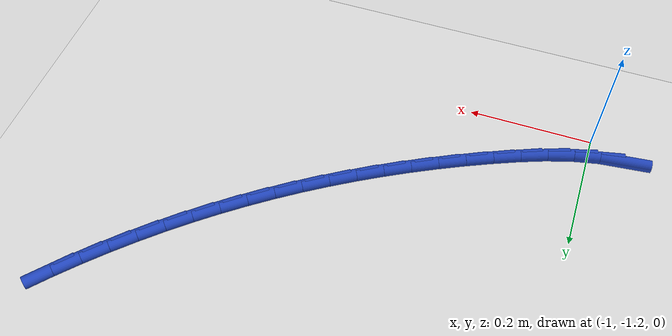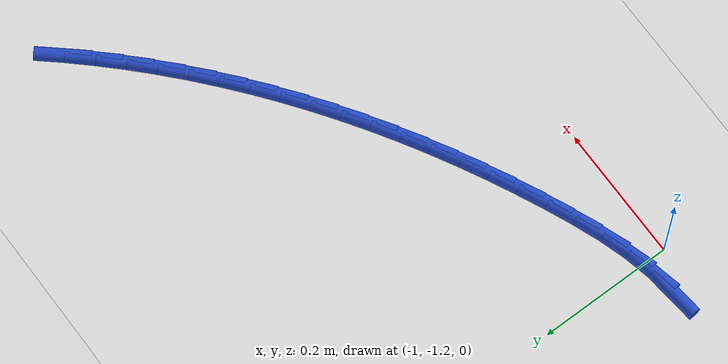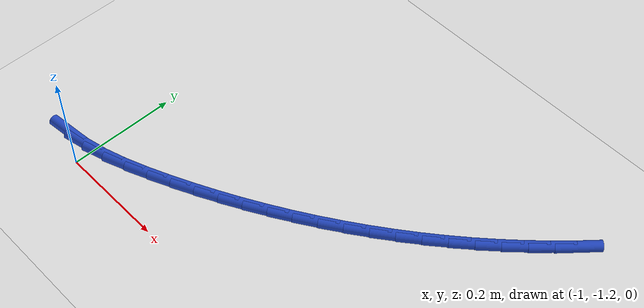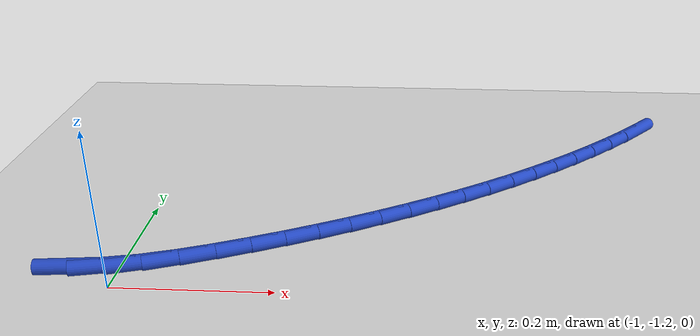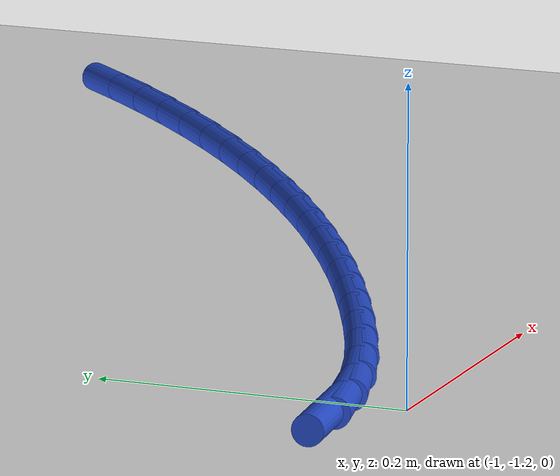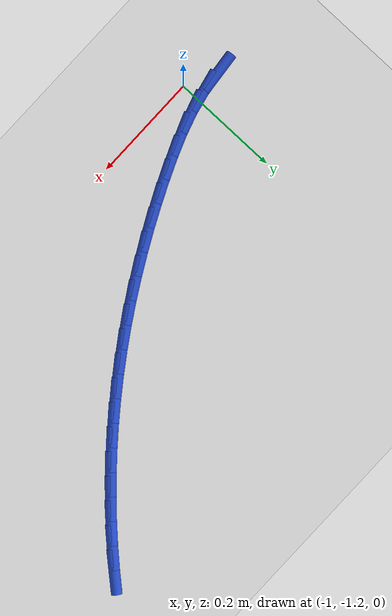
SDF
<sdf version="1.6">
 <world name="default">
  <model name="ground_plane">
   <static>1</static>
   <link name="link">
    <collision name="collision">
     <geometry><plane><normal>0 0 1</normal><size>100 100</size></plane></geometry>
     <surface><friction><ode><mu>100</mu><mu2>50</mu2></ode></friction></surface>
    </collision>
    <visual name="visual">
     <cast_shadows>0</cast_shadows>
     <geometry><plane><normal>0 0 1</normal><size>100 100</size></plane></geometry>
     <material>
      <script><uri>file://media/materials/scripts/gazebo.material</uri><name>Gazebo/WhiteGlow</name></script>
     </material>
    </visual>
   </link>
  </model>
  <model name="line">
   <link name="link_131">
    <pose>-1.057804071009862 -1.1711483754628318 0.01 0 1.57 0.10692570226936104</pose>
    <collision name="collision">
     <geometry><cylinder><radius>0.01</radius><length>0.08</length></cylinder></geometry>
    </collision>
    <visual name="visual">
     <material>
      <script><name>Gazebo/Blue</name><uri>file://media/materials/scripts/gazebo.material</uri></script>
     </material>
     <geometry><cylinder><radius>0.01</radius><length>0.08</length></cylinder></geometry>
    </visual>
   </link>
   <link name="link_132">
    <pose>-1.0165549403596417 -1.166720897048719 0.01 0 1.57 0.22177937319689406</pose>
    <collision name="collision">
     <geometry><cylinder><radius>0.01</radius><length>0.08</length></cylinder></geometry>
    </collision>
    <visual name="visual">
     <material>
      <script><name>Gazebo/Blue</name><uri>file://media/materials/scripts/gazebo.material</uri></script>
     </material>
     <geometry><cylinder><radius>0.01</radius><length>0.08</length></cylinder></geometry>
    </visual>
   </link>
   <link name="link_133">
    <pose>-0.9750904511408277 -1.1573711307790229 0.01 0 1.57 0.30839869009863224</pose>
    <collision name="collision">
     <geometry><cylinder><radius>0.01</radius><length>0.08</length></cylinder></geometry>
    </collision>
    <visual name="visual">
     <material>
      <script><name>Gazebo/Blue</name><uri>file://media/materials/scripts/gazebo.material</uri></script>
     </material>
     <geometry><cylinder><radius>0.01</radius><length>0.08</length></cylinder></geometry>
    </visual>
   </link>
   <link name="link_134">
    <pose>-0.9336181976816219 -1.1441596140541512 0.01 0 1.57 0.3695213875242319</pose>
    <collision name="collision">
     <geometry><cylinder><radius>0.01</radius><length>0.08</length></cylinder></geometry>
    </collision>
    <visual name="visual">
     <material>
      <script><name>Gazebo/Blue</name><uri>file://media/materials/scripts/gazebo.material</uri></script>
     </material>
     <geometry><cylinder><radius>0.01</radius><length>0.08</length></cylinder></geometry>
    </visual>
   </link>
   <link name="link_135">
    <pose>-0.8923509604217104 -1.1281762910365658 0.01 0 1.57 0.4082372257329573</pose>
    <collision name="collision">
     <geometry><cylinder><radius>0.01</radius><length>0.08</length></cylinder></geometry>
    </collision>
    <visual name="visual">
     <material>
      <script><name>Gazebo/Blue</name><uri>file://media/materials/scripts/gazebo.material</uri></script>
     </material>
     <geometry><cylinder><radius>0.01</radius><length>0.08</length></cylinder></geometry>
    </visual>
   </link>
   <link name="link_136">
    <pose>-0.8515008051220863 -1.1105070859017263 0.01 0 1.57 0.43323844366111847</pose>
    <collision name="collision">
     <geometry><cylinder><radius>0.01</radius><length>0.08</length></cylinder></geometry>
    </collision>
    <visual name="visual">
     <material>
      <script><name>Gazebo/Blue</name><uri>file://media/materials/scripts/gazebo.material</uri></script>
     </material>
     <geometry><cylinder><radius>0.01</radius><length>0.08</length></cylinder></geometry>
    </visual>
   </link>
   <link name="link_137">
    <pose>-0.8112149196615888 -1.0918729920585335 0.01 0 1.57 0.4572619533699034</pose>
    <collision name="collision">
     <geometry><cylinder><radius>0.01</radius><length>0.08</length></cylinder></geometry>
    </collision>
    <visual name="visual">
     <material>
      <script><name>Gazebo/Blue</name><uri>file://media/materials/scripts/gazebo.material</uri></script>
     </material>
     <geometry><cylinder><radius>0.01</radius><length>0.08</length></cylinder></geometry>
    </visual>
   </link>
   <link name="link_138">
    <pose>-0.7715247003628525 -1.072343688477722 0.01 0 1.57 0.4815950910984151</pose>
    <collision name="collision">
     <geometry><cylinder><radius>0.01</radius><length>0.08</length></cylinder></geometry>
    </collision>
    <visual name="visual">
     <material>
      <script><name>Gazebo/Blue</name><uri>file://media/materials/scripts/gazebo.material</uri></script>
     </material>
     <geometry><cylinder><radius>0.01</radius><length>0.08</length></cylinder></geometry>
    </visual>
   </link>
   <link name="link_139">
    <pose>-0.7324495621766905 -1.051921460265454 0.01 0 1.57 0.5062424268276722</pose>
    <collision name="collision">
     <geometry><cylinder><radius>0.01</radius><length>0.08</length></cylinder></geometry>
    </collision>
    <visual name="visual">
     <material>
      <script><name>Gazebo/Blue</name><uri>file://media/materials/scripts/gazebo.material</uri></script>
     </material>
     <geometry><cylinder><radius>0.01</radius><length>0.08</length></cylinder></geometry>
    </visual>
   </link>
   <link name="link_140">
    <pose>-0.6940089200539158 -1.030608592527892 0.01 0 1.57 0.5312074762378691</pose>
    <collision name="collision">
     <geometry><cylinder><radius>0.01</radius><length>0.08</length></cylinder></geometry>
    </collision>
    <visual name="visual">
     <material>
      <script><name>Gazebo/Blue</name><uri>file://media/materials/scripts/gazebo.material</uri></script>
     </material>
     <geometry><cylinder><radius>0.01</radius><length>0.08</length></cylinder></geometry>
    </visual>
   </link>
   <link name="link_141">
    <pose>-0.6562221889453409 -1.0084073703711975 0.01 0 1.57 0.5564925954434152</pose>
    <collision name="collision">
     <geometry><cylinder><radius>0.01</radius><length>0.08</length></cylinder></geometry>
    </collision>
    <visual name="visual">
     <material>
      <script><name>Gazebo/Blue</name><uri>file://media/materials/scripts/gazebo.material</uri></script>
     </material>
     <geometry><cylinder><radius>0.01</radius><length>0.08</length></cylinder></geometry>
    </visual>
   </link>
   <link name="link_142">
    <pose>-0.6191087838017775 -0.9853200789015316 0.01 0 1.57 0.5820988746794125</pose>
    <collision name="collision">
     <geometry><cylinder><radius>0.01</radius><length>0.08</length></cylinder></geometry>
    </collision>
    <visual name="visual">
     <material>
      <script><name>Gazebo/Blue</name><uri>file://media/materials/scripts/gazebo.material</uri></script>
     </material>
     <geometry><cylinder><radius>0.01</radius><length>0.08</length></cylinder></geometry>
    </visual>
   </link>
   <link name="link_143">
    <pose>-0.58268811957404 -0.9613490032250572 0.01 0 1.57 0.6080260323984803</pose>
    <collision name="collision">
     <geometry><cylinder><radius>0.01</radius><length>0.08</length></cylinder></geometry>
    </collision>
    <visual name="visual">
     <material>
      <script><name>Gazebo/Blue</name><uri>file://media/materials/scripts/gazebo.material</uri></script>
     </material>
     <geometry><cylinder><radius>0.01</radius><length>0.08</length></cylinder></geometry>
    </visual>
   </link>
   <link name="link_144">
    <pose>-0.5469796112129404 -0.9364964284479363 0.01 0 1.57 0.6342723114720316</pose>
    <collision name="collision">
     <geometry><cylinder><radius>0.01</radius><length>0.08</length></cylinder></geometry>
    </collision>
    <visual name="visual">
     <material>
      <script><name>Gazebo/Blue</name><uri>file://media/materials/scripts/gazebo.material</uri></script>
     </material>
     <geometry><cylinder><radius>0.01</radius><length>0.08</length></cylinder></geometry>
    </visual>
   </link>
   <link name="link_145">
    <pose>-0.5120026736692912 -0.9107646396763298 0.01 0 1.57 0.6608343794182134</pose>
    <collision name="collision">
     <geometry><cylinder><radius>0.01</radius><length>0.08</length></cylinder></geometry>
    </collision>
    <visual name="visual">
     <material>
      <script><name>Gazebo/Blue</name><uri>file://media/materials/scripts/gazebo.material</uri></script>
     </material>
     <geometry><cylinder><radius>0.01</radius><length>0.08</length></cylinder></geometry>
    </visual>
   </link>
   <link name="link_146">
    <pose>-0.4777767218939054 -0.8841559220164005 0.01 0 1.57 0.6877072347907642</pose>
    <collision name="collision">
     <geometry><cylinder><radius>0.01</radius><length>0.08</length></cylinder></geometry>
    </collision>
    <visual name="visual">
     <material>
      <script><name>Gazebo/Blue</name><uri>file://media/materials/scripts/gazebo.material</uri></script>
     </material>
     <geometry><cylinder><radius>0.01</radius><length>0.08</length></cylinder></geometry>
    </visual>
   </link>
   <link name="link_147">
    <pose>-0.4443211708375951 -0.8566725605743095 0.01 0 1.57 0.7148841220449623</pose>
    <collision name="collision">
     <geometry><cylinder><radius>0.01</radius><length>0.08</length></cylinder></geometry>
    </collision>
    <visual name="visual">
     <material>
      <script><name>Gazebo/Blue</name><uri>file://media/materials/scripts/gazebo.material</uri></script>
     </material>
     <geometry><cylinder><radius>0.01</radius><length>0.08</length></cylinder></geometry>
    </visual>
   </link>
   <link name="link_148">
    <pose>-0.4116554354511739 -0.8283168404562193 0.01 0 1.57 0.7423564573383767</pose>
    <collision name="collision">
     <geometry><cylinder><radius>0.01</radius><length>0.08</length></cylinder></geometry>
    </collision>
    <visual name="visual">
     <material>
      <script><name>Gazebo/Blue</name><uri>file://media/materials/scripts/gazebo.material</uri></script>
     </material>
     <geometry><cylinder><radius>0.01</radius><length>0.08</length></cylinder></geometry>
    </visual>
   </link>
   <link name="link_149">
    <pose>-0.3797989306854541 -0.7990910467682917 0.01 0 1.57 0.770113767809086</pose>
    <collision name="collision">
     <geometry><cylinder><radius>0.01</radius><length>0.08</length></cylinder></geometry>
    </collision>
    <visual name="visual">
     <material>
      <script><name>Gazebo/Blue</name><uri>file://media/materials/scripts/gazebo.material</uri></script>
     </material>
     <geometry><cylinder><radius>0.01</radius><length>0.08</length></cylinder></geometry>
    </visual>
   </link>
   <link name="link_150">
    <pose>-0.3487710714912486 -0.7689974646166887 0.01 0 1.57 0.7981436468900902</pose>
    <collision name="collision">
     <geometry><cylinder><radius>0.01</radius><length>0.08</length></cylinder></geometry>
    </collision>
    <visual name="visual">
     <material>
      <script><name>Gazebo/Blue</name><uri>file://media/materials/scripts/gazebo.material</uri></script>
     </material>
     <geometry><cylinder><radius>0.01</radius><length>0.08</length></cylinder></geometry>
    </visual>
   </link>
   <link name="link_151">
    <pose>-0.3185912728193698 -0.7380383791075718 0.01 0 1.57 0.8264317281525312</pose>
    <collision name="collision">
     <geometry><cylinder><radius>0.01</radius><length>0.08</length></cylinder></geometry>
    </collision>
    <visual name="visual">
     <material>
      <script><name>Gazebo/Blue</name><uri>file://media/materials/scripts/gazebo.material</uri></script>
     </material>
     <geometry><cylinder><radius>0.01</radius><length>0.08</length></cylinder></geometry>
    </visual>
   </link>
   <link name="link_152">
    <pose>-0.2892789496206306 -0.7062160753471031 0.01 0 1.57 0.8549616800444242</pose>
    <collision name="collision">
     <geometry><cylinder><radius>0.01</radius><length>0.08</length></cylinder></geometry>
    </collision>
    <visual name="visual">
     <material>
      <script><name>Gazebo/Blue</name><uri>file://media/materials/scripts/gazebo.material</uri></script>
     </material>
     <geometry><cylinder><radius>0.01</radius><length>0.08</length></cylinder></geometry>
    </visual>
   </link>
  </model>
 </world>
</sdf>
